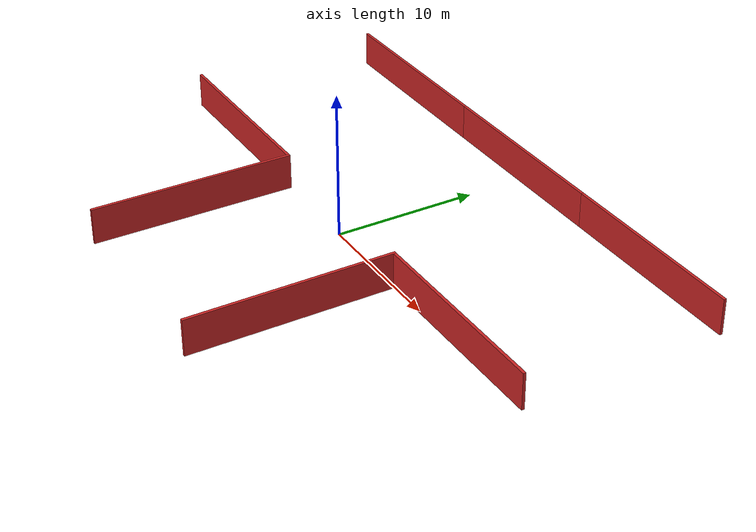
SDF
<?xml version='1.0'?>
<sdf version='1.4'>
  <model name='model'>

    <link name='Wall_1'>
      <collision name='Wall_1_Collision'>
        <geometry>
          <box>
            <size>14 0.2 2.5</size>
          </box>
        </geometry>
        <pose>0 0 1.25 0 -0 0</pose>
      </collision>
      <visual name='Wall_1_Visual'>
        <pose>0 0 1.25 0 -0 0</pose>
        <geometry>
          <box>
            <size>14 0.2 2.5</size>
          </box>
        </geometry>
        <material>
          <script>
             <uri>model://materials/scripts</uri>
             <uri>model://materials/textures</uri>
             <name>vrc/red_wall</name>
          </script>
        </material>
      </visual>
      <velocity_decay>
        <linear>0</linear>
        <angular>0</angular>
      </velocity_decay>
      <pose>-14 14 0 0 -0 0</pose>
    </link>

    <link name='Wall_1'>
      <collision name='Wall_1_Collision'>
        <geometry>
          <box>
            <size>14 0.2 2.5</size>
          </box>
        </geometry>
        <pose>0 0 1.25 0 -0 0</pose>
      </collision>
      <visual name='Wall_1_Visual'>
        <pose>0 0 1.25 0 -0 0</pose>
        <geometry>
          <box>
            <size>14 0.2 2.5</size>
          </box>
        </geometry>
        <material>
          <script>
             <uri>model://materials/scripts</uri>
             <uri>model://materials/textures</uri>
             <name>vrc/red_wall</name>
          </script>
        </material>
      </visual>
      <velocity_decay>
        <linear>0</linear>
        <angular>0</angular>
      </velocity_decay>
      <pose>0 14 0 0 -0 0</pose>
    </link>

    <link name='Wall_1'>
      <collision name='Wall_1_Collision'>
        <geometry>
          <box>
            <size>14 0.2 2.5</size>
          </box>
        </geometry>
        <pose>0 0 1.25 0 -0 0</pose>
      </collision>
      <visual name='Wall_1_Visual'>
        <pose>0 0 1.25 0 -0 0</pose>
        <geometry>
          <box>
            <size>14 0.2 2.5</size>
          </box>
        </geometry>
        <material>
          <script>
             <uri>model://materials/scripts</uri>
             <uri>model://materials/textures</uri>
             <name>vrc/red_wall</name>
          </script>
        </material>
      </visual>
      <velocity_decay>
        <linear>0</linear>
        <angular>0</angular>
      </velocity_decay>
      <pose>14 14 0 0 -0 0</pose>
    </link>

    <link name='Wall_11'>
      <collision name='Wall_11_Collision'>
        <geometry>
          <box>
            <size>14.1 0.2 2.5</size>
          </box>
        </geometry>
        <pose>0 0 1.25 0 -0 0</pose>
      </collision>
      <visual name='Wall_11_Visual'>
        <pose>0 0 1.25 0 -0 0</pose>
        <geometry>
          <box>
            <size>14.1 0.2 2.5</size>
          </box>
        </geometry>
        <material>
          <script>
             <uri>model://materials/scripts</uri>
             <uri>model://materials/textures</uri>
             <name>vrc/red_wall</name>
          </script>
        </material>
      </visual>
      <velocity_decay>
        <linear>0</linear>
        <angular>0</angular>
      </velocity_decay>
      <pose>-7 -6.95 0 0 0 -1.5708</pose>
    </link>
    <link name='Wall_13'>
      <collision name='Wall_13_Collision'>
        <geometry>
          <box>
            <size>14.1 0.2 2.5</size>
          </box>
        </geometry>
        <pose>0 0 1.25 0 -0 0</pose>
      </collision>
      <visual name='Wall_13_Visual'>
        <pose>0 0 1.25 0 -0 0</pose>
        <geometry>
          <box>
            <size>14.1 0.2 2.5</size>
          </box>
        </geometry>
        <material>
          <script>
             <uri>model://materials/scripts</uri>
             <uri>model://materials/textures</uri>
             <name>vrc/red_wall</name>
          </script>
        </material>
      </visual>
      <velocity_decay>
        <linear>0</linear>
        <angular>0</angular>
      </velocity_decay>
      <pose>7 -6.95 0 0 0 -1.5708</pose>
    </link>
    <link name='Wall_15'>
      <collision name='Wall_15_Collision'>
        <geometry>
          <box>
            <size>13.9 0.2 2.5</size>
          </box>
        </geometry>
        <pose>0 0 1.25 0 -0 0</pose>
      </collision>
      <visual name='Wall_15_Visual'>
        <pose>0 0 1.25 0 -0 0</pose>
        <geometry>
          <box>
            <size>13.9 0.2 2.5</size>
          </box>
        </geometry>
        <material>
          <script>
             <uri>model://materials/scripts</uri>
             <uri>model://materials/textures</uri>
             <name>vrc/red_wall</name>
          </script>
        </material>
      </visual>
      <velocity_decay>
        <linear>0</linear>
        <angular>0</angular>
      </velocity_decay>
      <pose>14.05 0 0 0 -0 0</pose>
    </link>
    <link name='Wall_9'>
      <collision name='Wall_9_Collision'>
        <geometry>
          <box>
            <size>13.9 0.2 2.5</size>
          </box>
        </geometry>
        <pose>0 0 1.25 0 -0 0</pose>
      </collision>
      <visual name='Wall_9_Visual'>
        <pose>0 0 1.25 0 -0 0</pose>
        <geometry>
          <box>
            <size>13.9 0.2 2.5</size>
          </box>
        </geometry>
        <material>
          <script>
             <uri>model://materials/scripts</uri>
             <uri>model://materials/textures</uri>
             <name>vrc/red_wall</name>
          </script>
        </material>
      </visual>
      <velocity_decay>
        <linear>0</linear>
        <angular>0</angular>
      </velocity_decay>
      <pose>-14.05 0 0 0 -0 0</pose>
    </link>
    <static>1</static>
  </model>
</sdf>
